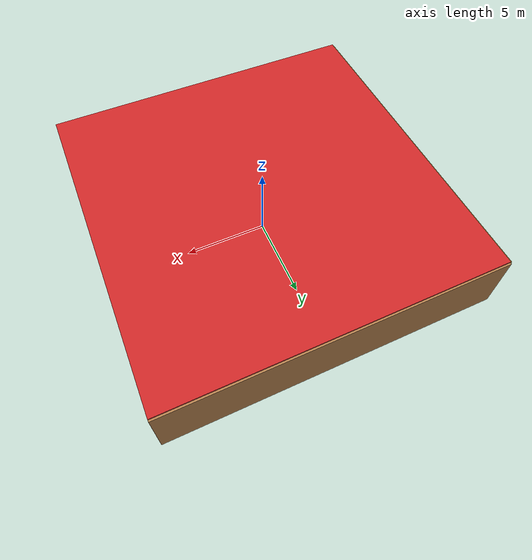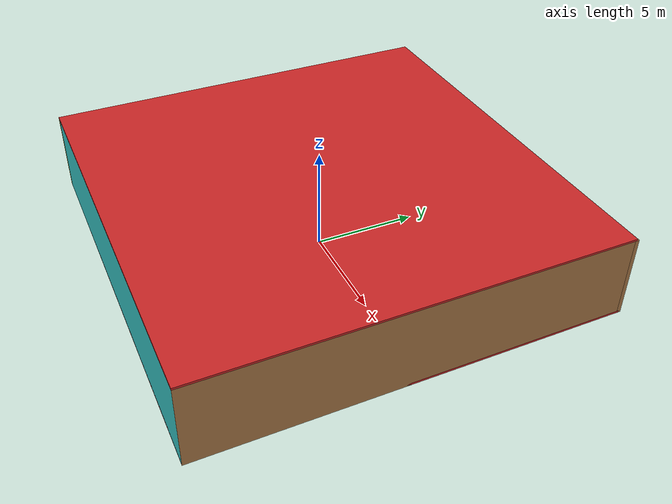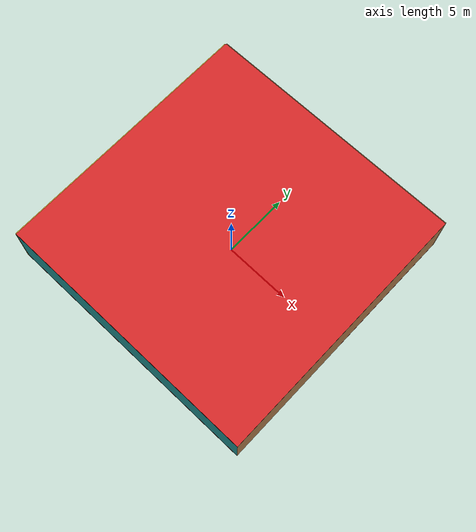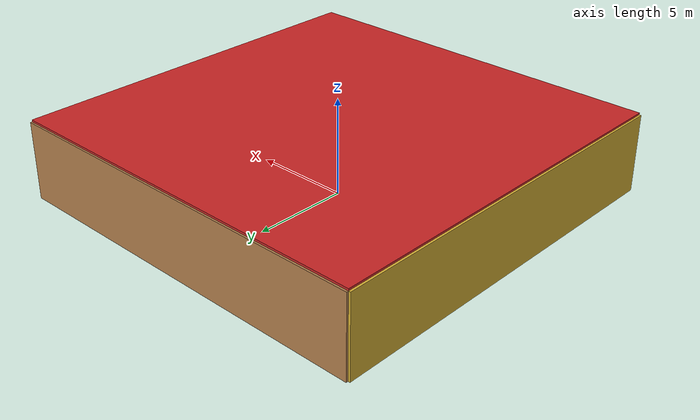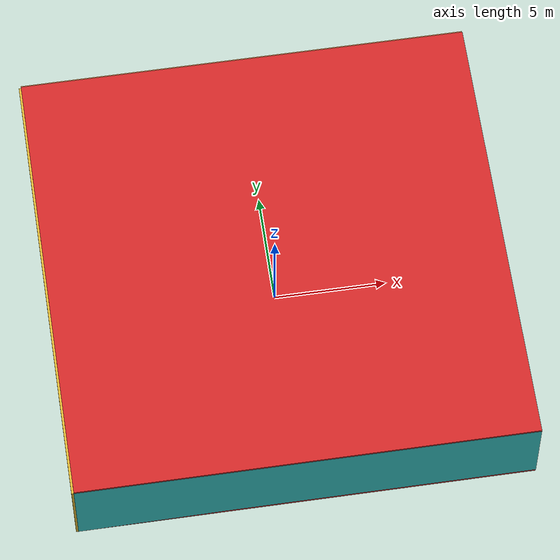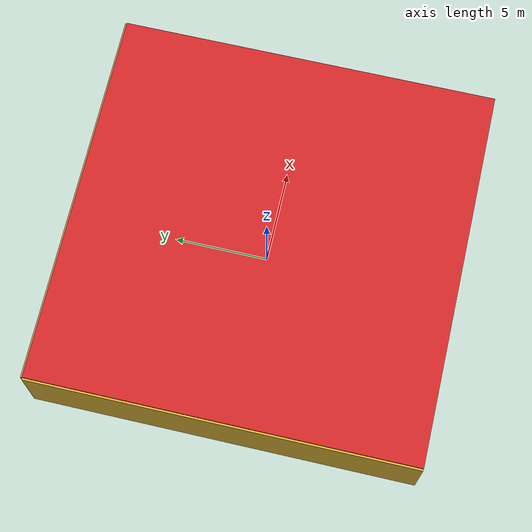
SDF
<sdf version="1.4">
 <world name="default">
  <physics type="ode">
   <max_step_size>0.001</max_step_size>
   <real_time_factor>1</real_time_factor>
   <real_time_update_rate>1000</real_time_update_rate>
   <gravity>0 0 -9.8</gravity>
  </physics>
  <scene><ambient>0.4 0.4 0.4 1</ambient><background>0.7 0.7 0.7 1</background><shadows>1</shadows></scene>
  <model name="Surrounding">
   <static>1</static>
   <link name="Ceiling">
    <collision name="Ceiling_Collision"><geometry><box><size>20 20 0.1</size></box></geometry></collision>
    <visual name="Ceiling_Visual">
     <geometry><box><size>20 20 0.1</size></box></geometry>
     <material>
      <script><uri>file://media/materials/scripts/gazebo.material</uri><name>Gazebo/Red</name></script>
     </material>
    </visual>
    <pose>0 0 4.05 0 0 0</pose>
   </link>
   <link name="Wall_South">
    <collision name="Wall_South_Collision">
     <geometry><box><size>20 0 4</size></box></geometry>
     <pose>0 0 2 0 -0 0</pose>
    </collision>
    <visual name="Wall_South_Visual">
     <pose>0 0 2 0 -0 0</pose>
     <geometry><box><size>20 0 4</size></box></geometry>
     <material>
      <script>
       <uri>file://media/materials/scripts/gazebo.material</uri>
       <name>Gazebo/TurquoiseGlowOutline</name>
      </script>
     </material>
    </visual>
    <velocity_decay><linear>0</linear><angular>0</angular></velocity_decay>
    <pose>0 -10 0 0 -0 0</pose>
   </link>
   <link name="Wall_East">
    <collision name="Wall_21_Collision">
     <geometry><box><size>20 0 4</size></box></geometry>
     <pose>0 0 2 0 -0 0</pose>
    </collision>
    <visual name="Wall_21_Visual">
     <pose>0 0 2 0 -0 0</pose>
     <geometry><box><size>20 0 4</size></box></geometry>
     <material>
      <script><uri>file://media/materials/scripts/gazebo.material</uri><name>Gazebo/Wood</name></script>
     </material>
    </visual>
    <velocity_decay><linear>0</linear><angular>0</angular></velocity_decay>
    <pose>10 0 0 0 -0 1.5708</pose>
   </link>
   <link name="Wall_North">
    <collision name="Wall_22_Collision">
     <geometry><box><size>20 0.2 4</size></box></geometry>
     <pose>0 0 2 0 -0 0</pose>
    </collision>
    <visual name="Wall_22_Visual">
     <pose>0 0 2 0 -0 0</pose>
     <geometry><box><size>20 0.2 4</size></box></geometry>
     <material>
      <script><uri>file://media/materials/scripts/gazebo.material</uri><name>Gazebo/WoodFloor</name></script>
     </material>
    </visual>
    <velocity_decay><linear>0</linear><angular>0</angular></velocity_decay>
    <pose>0 10 0 0 -0 0</pose>
   </link>
   <link name="Wall_West">
    <collision name="Wall_23_Collision">
     <geometry><box><size>20 0.2 4</size></box></geometry>
     <pose>0 0 2 0 -0 0</pose>
    </collision>
    <visual name="Wall_23_Visual">
     <pose>0 0 2 0 -0 0</pose>
     <geometry><box><size>20 0.2 4</size></box></geometry>
     <material>
      <script><uri>file://media/materials/scripts/gazebo.material</uri><name>Gazebo/Gold</name></script>
     </material>
    </visual>
    <velocity_decay><linear>0</linear><angular>0</angular></velocity_decay>
    <pose>-10 0 0 0 0 -1.5708</pose>
   </link>
   <link name="Ground_link">
    <collision name="collision">
     <pose>0 0 .05 0 -0 0</pose>
     <geometry><box><size>20 20 0.1</size></box></geometry>
    </collision>
    <visual name="visual">
     <pose>0 0 .05 0 -0 0</pose>
     <geometry><box><size>20 20 0.1</size></box></geometry>
     <material>
      <script><uri>file://media/materials/scripts/gazebo.material</uri><name>Gazebo/RedBright</name></script>
     </material>
    </visual>
   </link>
   <static>1</static>
  </model>
  <spherical_coordinates>
   <surface_model>EARTH_WGS84</surface_model>
   <latitude_deg>0</latitude_deg>
   <longitude_deg>0</longitude_deg>
   <elevation>0</elevation>
   <heading_deg>0</heading_deg>
  </spherical_coordinates>
  <light name="lightball_0" type="diffuse">
   <diffuse>0.8 0.8 0.8 1</diffuse>
   <specular>0.2 0.2 0.2 1</specular>
   <attenuation>
    <range>100</range>
    <constant>0.7</constant>
    <linear>0.01</linear>
    <quadratic>0.001</quadratic>
   </attenuation>
   <direction>-0.5 0.1 -0.9</direction>
   <pose>-2.43458791865 -3.11546189684 1.24405967831 0 0 0</pose>
  </light>
  <light name="lightball_1" type="diffuse">
   <diffuse>0.8 0.8 0.8 1</diffuse>
   <specular>0.2 0.2 0.2 1</specular>
   <attenuation>
    <range>100</range>
    <constant>0.7</constant>
    <linear>0.01</linear>
    <quadratic>0.001</quadratic>
   </attenuation>
   <direction>-0.5 0.1 -0.9</direction>
   <pose>8.87009975857 9.75994884806 3.02028077571 0 0 0</pose>
  </light>
  <light name="lightball_2" type="diffuse">
   <diffuse>0.8 0.8 0.8 1</diffuse>
   <specular>0.2 0.2 0.2 1</specular>
   <attenuation>
    <range>100</range>
    <constant>0.7</constant>
    <linear>0.01</linear>
    <quadratic>0.001</quadratic>
   </attenuation>
   <direction>-0.5 0.1 -0.9</direction>
   <pose>-4.96700314844 4.79304987872 2.97970356896 0 0 0</pose>
  </light>
  <light name="lightball_3" type="diffuse">
   <diffuse>0.8 0.8 0.8 1</diffuse>
   <specular>0.2 0.2 0.2 1</specular>
   <attenuation>
    <range>100</range>
    <constant>0.7</constant>
    <linear>0.01</linear>
    <quadratic>0.001</quadratic>
   </attenuation>
   <direction>-0.5 0.1 -0.9</direction>
   <pose>4.81746809799 2.16288471751 2.79254786486 0 0 0</pose>
  </light>
  <light name="lightball_4" type="diffuse">
   <diffuse>0.8 0.8 0.8 1</diffuse>
   <specular>0.2 0.2 0.2 1</specular>
   <attenuation>
    <range>100</range>
    <constant>0.7</constant>
    <linear>0.01</linear>
    <quadratic>0.001</quadratic>
   </attenuation>
   <direction>-0.5 0.1 -0.9</direction>
   <pose>9.69178813647 0.630784736317 1.45717336001 0 0 0</pose>
  </light>
  <light name="lightball_5" type="diffuse">
   <diffuse>0.8 0.8 0.8 1</diffuse>
   <specular>0.2 0.2 0.2 1</specular>
   <attenuation>
    <range>100</range>
    <constant>0.7</constant>
    <linear>0.01</linear>
    <quadratic>0.001</quadratic>
   </attenuation>
   <direction>-0.5 0.1 -0.9</direction>
   <pose>1.70147303269 9.12519203595 1.21771444085 0 0 0</pose>
  </light>
  <light name="lightball_6" type="diffuse">
   <diffuse>0.8 0.8 0.8 1</diffuse>
   <specular>0.2 0.2 0.2 1</specular>
   <attenuation>
    <range>100</range>
    <constant>0.7</constant>
    <linear>0.01</linear>
    <quadratic>0.001</quadratic>
   </attenuation>
   <direction>-0.5 0.1 -0.9</direction>
   <pose>-5.91780228858 -8.96018953544 2.23735645218 0 0 0</pose>
  </light>
  <light name="lightball_7" type="diffuse">
   <diffuse>0.8 0.8 0.8 1</diffuse>
   <specular>0.2 0.2 0.2 1</specular>
   <attenuation>
    <range>100</range>
    <constant>0.7</constant>
    <linear>0.01</linear>
    <quadratic>0.001</quadratic>
   </attenuation>
   <direction>-0.5 0.1 -0.9</direction>
   <pose>5.08685720763 7.93740688106 0.762711897148 0 0 0</pose>
  </light>
  <light name="lightball_8" type="diffuse">
   <diffuse>0.8 0.8 0.8 1</diffuse>
   <specular>0.2 0.2 0.2 1</specular>
   <attenuation>
    <range>100</range>
    <constant>0.7</constant>
    <linear>0.01</linear>
    <quadratic>0.001</quadratic>
   </attenuation>
   <direction>-0.5 0.1 -0.9</direction>
   <pose>2.62312128672 5.3310245925 2.7130906816 0 0 0</pose>
  </light>
  <light name="lightball_9" type="diffuse">
   <diffuse>0.8 0.8 0.8 1</diffuse>
   <specular>0.2 0.2 0.2 1</specular>
   <attenuation>
    <range>100</range>
    <constant>0.7</constant>
    <linear>0.01</linear>
    <quadratic>0.001</quadratic>
   </attenuation>
   <direction>-0.5 0.1 -0.9</direction>
   <pose>7.13970823851 8.26458019794 2.74585976336 0 0 0</pose>
  </light>
  <light name="lightball_10" type="diffuse">
   <diffuse>0.8 0.8 0.8 1</diffuse>
   <specular>0.2 0.2 0.2 1</specular>
   <attenuation>
    <range>100</range>
    <constant>0.7</constant>
    <linear>0.01</linear>
    <quadratic>0.001</quadratic>
   </attenuation>
   <direction>-0.5 0.1 -0.9</direction>
   <pose>7.72864511547 -7.43944406571 3.01230020159 0 0 0</pose>
  </light>
  <light name="lightball_11" type="diffuse">
   <diffuse>0.8 0.8 0.8 1</diffuse>
   <specular>0.2 0.2 0.2 1</specular>
   <attenuation>
    <range>100</range>
    <constant>0.7</constant>
    <linear>0.01</linear>
    <quadratic>0.001</quadratic>
   </attenuation>
   <direction>-0.5 0.1 -0.9</direction>
   <pose>-4.74868018997 -2.25122772268 3.38864047554 0 0 0</pose>
  </light>
  <include><uri>model://cabinet</uri><pose>1.77728730249 -8.18359566545 0 0 0 2.5869215066</pose></include>
  <include>
   <uri>model://textured_shapes</uri>
   <pose>1.96211879497 -4.79406475755 0 0 0 2.86115782587</pose>
  </include>
  <include>
   <uri>model://construction_cone</uri>
   <pose>7.62733757383 -1.36865967444 0 0 0 2.88753673968</pose>
  </include>
  <include>
   <uri>model://robocup_3Dsim_goal</uri>
   <pose>7.00284266352 2.23325863908 0 0 0 1.74610827944</pose>
  </include>
 </world>
</sdf>

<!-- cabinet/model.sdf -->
<sdf version="1.5">
  <model name="cabinet">
    <static>true</static>
    <link name="cabinet_bottom_plate">
      <inertial>
        <pose>0 0 -1 0 0 0</pose>
        <inertia>
          <ixx>2.050000</ixx>
          <ixy>0</ixy>
          <ixz>0</ixz>
          <iyy>2.050000</iyy>
          <iyz>0</iyz>
          <izz>2.050000</izz>
        </inertia>
        <mass>25.000000</mass>
      </inertial>
      <collision name="cabinet_bottom_plate_geom">
        <pose>0 0 0.010000 0 0 0</pose>
        <geometry>
          <box>
            <size>0.450000 0.450000 0.020000</size>
          </box>
        </geometry>
      </collision>
      <visual name="cabinet_bottom_plate_geom_visual">
        <pose>0 0 0.010000 0 0 0</pose>
        <geometry>
          <box>
            <size>0.450000 0.450000 0.020000</size>
          </box>
        </geometry>
        <material>
          <script>
            <uri>model://media/materials/scripts/gazebo.material</uri>
            <name>Gazebo/Wood</name>
          </script>
        </material>
      </visual>
      <collision name="cabinet_bottom_plate_geom_cabinet_back_plate">
        <pose>0.235000 0 0.510000 0 0 0</pose>
        <geometry>
          <box>
            <size>0.020000 0.450000 1.020000</size>
          </box>
        </geometry>
      </collision>
      <visual name="cabinet_bottom_plate_geom_cabinet_back_plate_visual">
        <pose>0.235000 0 0.510000 0 0 0</pose>
        <geometry>
          <box>
            <size>0.020000 0.450000 1.020000</size>
          </box>
        </geometry>
        <material>
          <script>
            <uri>model://media/materials/scripts/gazebo.material</uri>
            <name>Gazebo/Wood</name>
          </script>
        </material>
      </visual>
      <collision name="cabinet_bottom_plate_geom_cabinet_left_plate">
        <pose>0 0.235000 0.510000 0 0 0</pose>
        <geometry>
          <box>
            <size>0.450000 0.020000 1.020000</size>
          </box>
        </geometry>
      </collision>
      <visual name="cabinet_bottom_plate_geom_cabinet_left_plate_visual">
        <pose>0 0.235000 0.510000 0 0 0</pose>
        <geometry>
          <box>
            <size>0.450000 0.020000 1.020000</size>
          </box>
        </geometry>
        <material>
          <script>
            <uri>model://media/materials/scripts/gazebo.material</uri>
            <name>Gazebo/Wood</name>
          </script>
        </material>
      </visual>
      <collision name="cabinet_bottom_plate_geom_cabinet_middle_plate">
        <pose>0 0 0.510000 0 0 0</pose>
        <geometry>
          <box>
            <size>0.450000 0.450000 0.020000</size>
          </box>
        </geometry>
      </collision>
      <visual name="cabinet_bottom_plate_geom_cabinet_middle_plate_visual">
        <pose>0 0 0.510000 0 0 0</pose>
        <geometry>
          <box>
            <size>0.450000 0.450000 0.020000</size>
          </box>
        </geometry>
        <material>
          <script>
            <uri>model://media/materials/scripts/gazebo.material</uri>
            <name>Gazebo/Wood</name>
          </script>
        </material>
      </visual>
      <collision name="cabinet_bottom_plate_geom_cabinet_right_plate">
        <pose>0 -0.235000 0.510000 0 0 0</pose>
        <geometry>
          <box>
            <size>0.450000 0.020000 1.020000</size>
          </box>
        </geometry>
      </collision>
      <visual name="cabinet_bottom_plate_geom_cabinet_right_plate_visual">
        <pose>0 -0.235000 0.510000 0 0 0</pose>
        <geometry>
          <box>
            <size>0.450000 0.020000 1.020000</size>
          </box>
        </geometry>
        <material>
          <script>
            <uri>model://media/materials/scripts/gazebo.material</uri>
            <name>Gazebo/Wood</name>
          </script>
        </material>
      </visual>
      <collision name="cabinet_bottom_plate_geom_cabinet_top_plate">
        <pose>0 0 1.010000 0 0 0</pose>
        <geometry>
          <box>
            <size>0.450000 0.450000 0.020000</size>
          </box>
        </geometry>
      </collision>
      <visual name="cabinet_bottom_plate_geom_cabinet_top_plate_visual">
        <pose>0 0 1.010000 0 0 0</pose>
        <geometry>
          <box>
            <size>0.450000 0.450000 0.020000</size>
          </box>
        </geometry>
        <material>
          <script>
            <uri>model://media/materials/scripts/gazebo.material</uri>
            <name>Gazebo/Wood</name>
          </script>
        </material>
      </visual>
    </link>
  </model>
</sdf>

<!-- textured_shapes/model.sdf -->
<sdf version="1.6">
  <model name="textured_shapes">
    <pose>0 0 0.5 0 0 0</pose>
    <link name="box">
      <pose>0 -1.5 0 0 0 0</pose>
      <collision name="collision">
        <geometry>
          <box>
            <size>1 1 1</size>
          </box>
        </geometry>
      </collision>
      <visual name="visual">
        <geometry>
          <box>
            <size>1 1 1</size>
          </box>
        </geometry>
        <material>
          <script>
            <uri>model://../model_source/models/textured_shapes/materials/scripts</uri>
            <uri>model://../model_source/models/textured_shapes/materials/textures</uri>
            <name>TexturedShape/Squares</name>
          </script>
        </material>
      </visual>
    </link>
    <link name="sphere">
      <collision name="collision">
        <geometry>
          <sphere>
            <radius>0.5</radius>
          </sphere>
        </geometry>
      </collision>
      <visual name="visual">
        <geometry>
          <sphere>
            <radius>0.5</radius>
          </sphere>
        </geometry>
        <material>
          <script>
            <uri>model://../model_source/models/textured_shapes/materials/scripts</uri>
            <uri>model://../model_source/models/textured_shapes/materials/textures</uri>
            <name>TexturedShape/Squares</name>
          </script>
        </material>
      </visual>
    </link>
    <link name="cylinder">
      <pose>0 1.5 0 0 0 0</pose>
      <collision name="collision">
        <geometry>
          <cylinder>
            <radius>0.5</radius>
            <length>1</length>
          </cylinder>
        </geometry>
      </collision>
      <visual name="visual">
        <geometry>
          <cylinder>
            <radius>0.5</radius>
            <length>1</length>
          </cylinder>
        </geometry>
        <material>
          <script>
            <uri>model://../model_source/models/textured_shapes/materials/scripts</uri>
            <uri>model://../model_source/models/textured_shapes/materials/textures</uri>
            <name>TexturedShape/Squares</name>
          </script>
        </material>
      </visual>
    </link>
  </model>
</sdf>

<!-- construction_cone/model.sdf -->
<sdf version="1.5">
  <model name="Construction Cone">
    <link name="link">
      <collision name="collision">
        <geometry>
          <mesh>
            <scale>10 10 10</scale>
            <uri>file://isr-testbed/construction_cone/meshes/construction_cone.dae</uri>
          </mesh>
        </geometry>
      </collision>
      <visual name="visual">
        <geometry>
          <mesh>
            <scale>10 10 10</scale>
            <uri>file://isr-testbed/construction_cone/meshes/construction_cone.dae</uri>
          </mesh>
        </geometry>
      </visual>
    </link>
  </model>
</sdf>

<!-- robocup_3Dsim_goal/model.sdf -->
<sdf version="1.5">
  <model name="robocup_3d_goal">
    <static>true</static>
    <link name="left_post">
      <pose>0 1.05 0.45 0 0 0</pose>
      <collision name="collision">
        <geometry>
          <cylinder>
            <radius>0.05</radius>
            <length>0.9</length>
          </cylinder>
        </geometry>
      </collision>
      <visual name="visual">
        <geometry>
          <cylinder>
            <radius>0.05</radius>
            <length>0.9</length>
          </cylinder>
        </geometry>
        <material>
          <script>
            <uri>file://media/materials/scripts/gazebo.material</uri>
            <name>Gazebo/ZincYellow</name>
          </script>
        </material>
      </visual>
    </link>
    <link name="left_support_horiz_lower">
      <pose>0.30 1.05 0.01 0 0 0</pose>
      <collision name="collision">
        <geometry>
          <box>
            <size>0.50 0.02 0.02</size>
          </box>
        </geometry>
      </collision>
      <visual name="visual">
        <geometry>
          <box>
            <size>0.50 0.02 0.02</size>
          </box>
        </geometry>
        <material>
          <script>
            <uri>file://media/materials/scripts/gazebo.material</uri>
            <name>Gazebo/White</name>
          </script>
        </material>
      </visual>
    </link>
    <link name="left_support_horiz_upper">
      <pose>0.30 1.05 0.79 0 0 0</pose>
      <collision name="collision">
        <geometry>
          <box>
            <size>0.50 0.02 0.02</size>
          </box>
        </geometry>
      </collision>
      <visual name="visual">
        <geometry>
          <box>
            <size>0.50 0.02 0.02</size>
          </box>
        </geometry>
        <material>
          <script>
            <uri>file://media/materials/scripts/gazebo.material</uri>
            <name>Gazebo/White</name>
          </script>
        </material>
      </visual>
    </link>
    <link name="left_support_vertical">
      <pose>0.56 1.05 0.4 0 1.5708 0</pose>
      <collision name="collision">
        <geometry>
          <box>
            <size>0.80 0.02 0.02</size>
          </box>
        </geometry>
      </collision>
      <visual name="visual">
        <geometry>
          <box>
            <size>0.80 0.02 0.02</size>
          </box>
        </geometry>
        <material>
          <script>
            <uri>file://media/materials/scripts/gazebo.material</uri>
            <name>Gazebo/White</name>
          </script>
        </material>
      </visual>
    </link>
    <link name="right_support_horiz_lower">
      <pose>0.30 -1.05 0.01 0 0 0</pose>
      <collision name="collision">
        <geometry>
          <box>
            <size>0.50 0.02 0.02</size>
          </box>
        </geometry>
      </collision>
      <visual name="visual">
        <geometry>
          <box>
            <size>0.50 0.02 0.02</size>
          </box>
        </geometry>
        <material>
          <script>
            <uri>file://media/materials/scripts/gazebo.material</uri>
            <name>Gazebo/White</name>
          </script>
        </material>
      </visual>
    </link>
    <link name="right_support_horiz_upper">
      <pose>0.30 -1.05 0.79 0 0 0</pose>
      <collision name="collision">
        <geometry>
          <box>
            <size>0.50 0.02 0.02</size>
          </box>
        </geometry>
      </collision>
      <visual name="visual">
        <geometry>
          <box>
            <size>0.50 0.02 0.02</size>
          </box>
        </geometry>
        <material>
          <script>
            <uri>file://media/materials/scripts/gazebo.material</uri>
            <name>Gazebo/White</name>
          </script>
        </material>
      </visual>
    </link>
    <link name="right_support_vertical">
      <pose>0.56 -1.05 0.4 0 1.5708 0</pose>
      <collision name="collision">
        <geometry>
          <box>
            <size>0.80 0.02 0.02</size>
          </box>
        </geometry>
      </collision>
      <visual name="visual">
        <geometry>
          <box>
            <size>0.80 0.02 0.02</size>
          </box>
        </geometry>
        <material>
          <script>
            <uri>file://media/materials/scripts/gazebo.material</uri>
            <name>Gazebo/White</name>
          </script>
        </material>
      </visual>
    </link>
    <link name="center_support_horiz_lower">
      <pose>0.56 0 0.01 0 1.5708 0</pose>
      <collision name="collision">
        <geometry>
          <box>
            <size>0.02 2.08 0.02</size>
          </box>
        </geometry>
      </collision>
      <visual name="visual">
        <geometry>
          <box>
            <size>0.02 2.08 0.02</size>
          </box>
        </geometry>
        <material>
          <script>
            <uri>file://media/materials/scripts/gazebo.material</uri>
            <name>Gazebo/White</name>
          </script>
        </material>
      </visual>
    </link>
    <link name="center_support_horiz_upper">
      <pose>0.56 0 0.79 0 1.5708 0</pose>
      <collision name="collision">
        <geometry>
          <box>
            <size>0.02 2.08 0.02</size>
          </box>
        </geometry>
      </collision>
      <visual name="visual">
        <geometry>
          <box>
            <size>0.02 2.08 0.02</size>
          </box>
        </geometry>
        <material>
          <script>
            <uri>file://media/materials/scripts/gazebo.material</uri>
            <name>Gazebo/White</name>
          </script>
        </material>
      </visual>
    </link>
    <link name="right_post">
      <pose>0 -1.05 0.45 0 0 0</pose>
      <collision name="collision">
        <geometry>
          <cylinder>
            <radius>0.05</radius>
            <length>0.9</length>
          </cylinder>
        </geometry>
      </collision>
      <visual name="visual">
        <geometry>
          <cylinder>
            <radius>0.05</radius>
            <length>0.9</length>
          </cylinder>
        </geometry>
        <material>
          <script>
            <uri>file://media/materials/scripts/gazebo.material</uri>
            <name>Gazebo/ZincYellow</name>
          </script>
        </material>
      </visual>
    </link>
    <link name="crossbar">
      <pose>0 0 0.85 1.57 1.57 0</pose>
      <collision name="collision">
        <geometry>
          <cylinder>
            <radius>0.05</radius>
            <length>2.0</length>
          </cylinder>
        </geometry>
      </collision>
      <visual name="visual">
        <geometry>
          <cylinder>
            <radius>0.05</radius>
            <length>2.0</length>
          </cylinder>
        </geometry>
        <material>
          <script>
            <uri>file://media/materials/scripts/gazebo.material</uri>
            <name>Gazebo/ZincYellow</name>
          </script>
        </material>
      </visual>
    </link>
    <link name="center_net">
      <pose>0.56 0 0.40 0 0 0</pose>
      <collision name="collision">
        <geometry>
          <box>
            <size>0.01 2.1 0.80</size>
          </box>
        </geometry>
      </collision>
      <visual name="visual">
        <geometry>
          <box>
            <size>0.01 2.1 0.80</size>
          </box>
        </geometry>
        <material>
          <script>
            <uri>model://../model_source/models/robocup09_spl_field/materials/scripts/</uri>
            <uri>model://../model_source/models/robocup09_spl_field/materials/textures/</uri>
            <name>RoboCup/Net</name>
          </script>
        </material>
      </visual>
    </link>
    <link name="left_net">
      <pose>0.30 1.05 0.40 0 0 0</pose>
      <collision name="collision">
        <geometry>
          <box>
            <size>0.50 0.01 0.76</size>
          </box>
        </geometry>
      </collision>
      <visual name="visual">
        <geometry>
          <box>
            <size>0.50 0.01 0.76</size>
          </box>
        </geometry>
        <material>
          <script>
            <uri>model://../model_source/models/robocup09_spl_field/materials/scripts/</uri>
            <uri>model://../model_source/models/robocup09_spl_field/materials/textures/</uri>
            <name>RoboCup/Net</name>
          </script>
        </material>
      </visual>
    </link>
    <link name="right_net">
      <pose>0.30 -1.05 0.40 0 0 0</pose>
      <collision name="collision">
        <geometry>
          <box>
            <size>0.50 0.01 0.76</size>
          </box>
        </geometry>
      </collision>
      <visual name="visual">
        <geometry>
          <box>
            <size>0.50 0.01 0.76</size>
          </box>
        </geometry>
        <material>
          <script>
            <uri>model://../model_source/models/robocup09_spl_field/materials/scripts/</uri>
            <uri>model://../model_source/models/robocup09_spl_field/materials/textures/</uri>
            <name>RoboCup/Net</name>
          </script>
        </material>
      </visual>
    </link>
  </model>
</sdf>
